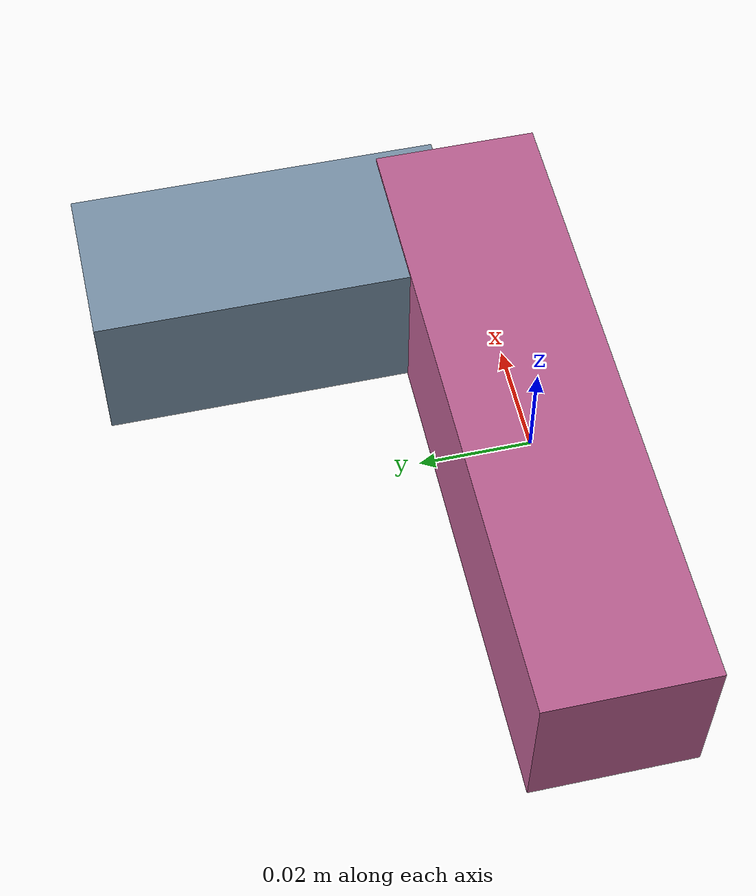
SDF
<sdf version="1.4"><world name="default"><model name="object0"><link name="link1"><pose>0 0 0 0 0 0</pose><inertial><pose>0 0 0 0 0 0</pose><mass>0.06259425740377245</mass><inertia><ixx>9.389138610565867e-06</ixx><ixy>0</ixy><iyy>7.47811235530511e-05</iyy><ixz>0</ixz><iyz>0</iyz><izz>7.47811235530511e-05</izz></inertia></inertial><visual name="link1_visual"><pose>0 0  0 0 0 0</pose><geometry><box><size>0.11591529148846749 0.03 0.03</size></box></geometry><material><diffuse>0.73751081328713 0.3764873322540553 0.5710623505384341 1</diffuse></material></visual><collision><pose>0 0  0 0 0 0</pose><geometry><box><size>0.11591529148846749 0.03 0.03</size></box></geometry></collision></link><link name="link2"><pose>0.044707426313287876 0.037895251951542495 0 0 0 0</pose><inertial><pose>0 0 0 0 0 0</pose><mass>0.03651166881636292</mass><inertia><ixx>1.6468832379466456e-05</ixx><ixy>0</ixy><iyy>5.297234617440653e-06</iyy><ixz>0</ixz><iyz>0</iyz><izz>1.6648348084480243e-05</izz></inertia></inertial><visual name="link2_visual"><pose>0 0  0 0 0 0</pose><geometry><box><size>0.03 0.06761420151178318 0.028999999999999998</size></box></geometry><material><diffuse>0.4781517935177174 0.5793307798883615 0.6645234550771094 1</diffuse></material></visual><collision><pose>0 0  0 0 0 0</pose><geometry><box><size>0.03 0.06761420151178318 0.028999999999999998</size></box></geometry></collision></link><joint name="link_joint_0" type="fixed"><parent>link1</parent><child>link2</child><pose>0 0 0 0 0 0</pose><axis><xyz>0 0 1</xyz></axis></joint></model></world></sdf>
